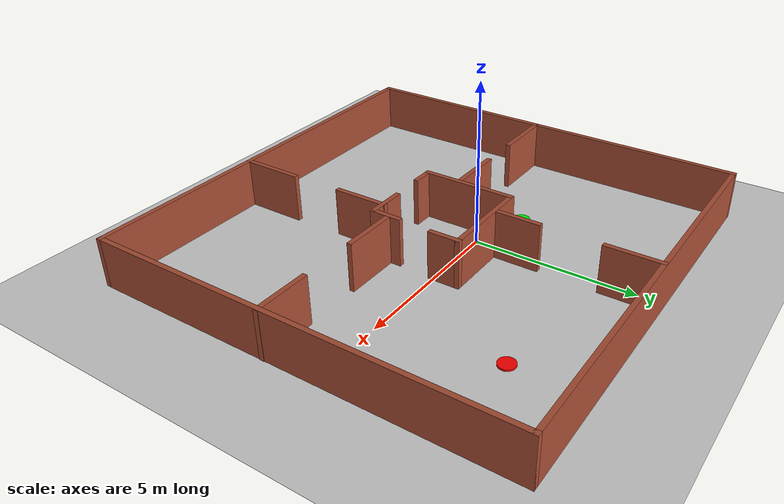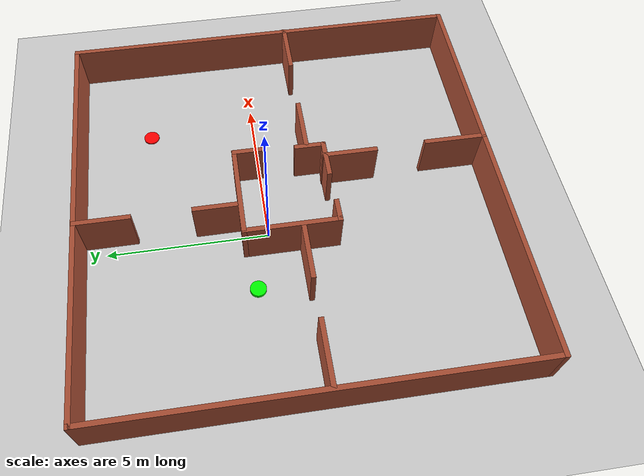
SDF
<sdf version="1.6">
 <world name="default">
  <light name="sun" type="directional">
   <pose>0 0 10 0 -0 0</pose>
   <diffuse>0.8 0.8 0.8 1</diffuse>
   <specular>0.2 0.2 0.2 1</specular>
   <attenuation>
    <range>1000</range>
    <constant>0.9</constant>
    <linear>0.01</linear>
    <quadratic>0.001</quadratic>
   </attenuation>
   <direction>-0.5 0.1 -0.9</direction>
   <spot><inner_angle>0</inner_angle><outer_angle>0</outer_angle><falloff>0</falloff></spot>
  </light>
  <model name="ground_plane">
   <static>1</static>
   <link name="link">
    <collision name="collision">
     <geometry><plane><normal>0 0 1</normal><size>100 100</size></plane></geometry>
     <surface>
      <contact><collide_bitmask>65535</collide_bitmask></contact>
      <friction><ode><mu>100</mu><mu2>50</mu2></ode></friction>
     </surface>
    </collision>
    <visual name="visual">
     <cast_shadows>0</cast_shadows>
     <geometry><plane><normal>0 0 1</normal><size>100 100</size></plane></geometry>
     <material>
      <script><uri>file://media/materials/scripts/gazebo.material</uri><name>Gazebo/Grey</name></script>
     </material>
    </visual>
   </link>
  </model>
  <gravity>0 0 -9.8</gravity>
  <magnetic_field>6e-06 2.3e-05 -4.2e-05</magnetic_field>
  <atmosphere type="adiabatic"/>
  <physics type="ode">
   <max_step_size>0.001</max_step_size>
   <real_time_factor>1</real_time_factor>
   <real_time_update_rate>1000</real_time_update_rate>
  </physics>
  <scene><ambient>0.4 0.4 0.4 1</ambient><background>0.7 0.7 0.7 1</background><shadows>1</shadows></scene>
  <spherical_coordinates>
   <surface_model>EARTH_WGS84</surface_model>
   <latitude_deg>0</latitude_deg>
   <longitude_deg>0</longitude_deg>
   <elevation>0</elevation>
   <heading_deg>0</heading_deg>
  </spherical_coordinates>
  <model name="BrickMaze1Building">
   <pose>0.921419 -0.732264 0 0 -0 0</pose>
   <link name="Wall_31">
    <collision name="Wall_31_Collision">
     <geometry><box><size>13 0.15 1.5</size></box></geometry>
     <pose>0 0 0.75 0 -0 0</pose>
    </collision>
    <visual name="Wall_31_Visual">
     <pose>0 0 0.75 0 -0 0</pose>
     <geometry><box><size>13 0.15 1.5</size></box></geometry>
     <material>
      <script><uri>file://media/materials/scripts/gazebo.material</uri><name>Gazebo/Bricks</name></script>
      <ambient>1 1 1 1</ambient>
     </material>
     <meta><layer>0</layer></meta>
    </visual>
    <pose>-0.0065 6.425 0 0 -0 0</pose>
   </link>
   <link name="Wall_32">
    <collision name="Wall_32_Collision">
     <geometry><box><size>13 0.15 1.5</size></box></geometry>
     <pose>0 0 0.75 0 -0 0</pose>
    </collision>
    <visual name="Wall_32_Visual">
     <pose>0 0 0.75 0 -0 0</pose>
     <geometry><box><size>13 0.15 1.5</size></box></geometry>
     <material>
      <script><uri>file://media/materials/scripts/gazebo.material</uri><name>Gazebo/Bricks</name></script>
      <ambient>1 1 1 1</ambient>
     </material>
     <meta><layer>0</layer></meta>
    </visual>
    <pose>6.4185 -0 0 0 -0 -1.5708</pose>
   </link>
   <link name="Wall_33">
    <collision name="Wall_33_Collision">
     <geometry><box><size>13 0.15 1.5</size></box></geometry>
     <pose>0 0 0.75 0 -0 0</pose>
    </collision>
    <visual name="Wall_33_Visual">
     <pose>0 0 0.75 0 -0 0</pose>
     <geometry><box><size>13 0.15 1.5</size></box></geometry>
     <material>
      <script><uri>file://media/materials/scripts/gazebo.material</uri><name>Gazebo/Bricks</name></script>
      <ambient>1 1 1 1</ambient>
     </material>
     <meta><layer>0</layer></meta>
    </visual>
    <pose>-0.0065 -6.425 0 0 -0 3.14159</pose>
   </link>
   <link name="Wall_34">
    <collision name="Wall_34_Collision">
     <geometry><box><size>13 0.15 1.5</size></box></geometry>
     <pose>0 0 0.75 0 -0 0</pose>
    </collision>
    <visual name="Wall_34_Visual">
     <pose>0 0 0.75 0 -0 0</pose>
     <geometry><box><size>13 0.15 1.5</size></box></geometry>
     <material>
      <script><uri>file://media/materials/scripts/gazebo.material</uri><name>Gazebo/Bricks</name></script>
      <ambient>1 1 1 1</ambient>
     </material>
     <meta><layer>0</layer></meta>
    </visual>
    <pose>-6.4315 -0 0 0 -0 1.5708</pose>
   </link>
   <link name="Wall_36">
    <collision name="Wall_36_Collision">
     <geometry><box><size>2 0.15 1.5</size></box></geometry>
     <pose>0 0 0.75 0 -0 0</pose>
    </collision>
    <visual name="Wall_36_Visual">
     <pose>0 0 0.75 0 -0 0</pose>
     <geometry><box><size>2 0.15 1.5</size></box></geometry>
     <material>
      <script><uri>file://media/materials/scripts/gazebo.material</uri><name>Gazebo/Bricks</name></script>
      <ambient>1 1 1 1</ambient>
     </material>
     <meta><layer>0</layer></meta>
    </visual>
    <pose>-5.4715 -0.252 0 0 -0 0</pose>
   </link>
   <link name="Wall_38">
    <collision name="Wall_38_Collision">
     <geometry><box><size>2 0.15 1.5</size></box></geometry>
     <pose>0 0 0.75 0 -0 0</pose>
    </collision>
    <visual name="Wall_38_Visual">
     <pose>0 0 0.75 0 -0 0</pose>
     <geometry><box><size>2 0.15 1.5</size></box></geometry>
     <material>
      <script><uri>file://media/materials/scripts/gazebo.material</uri><name>Gazebo/Bricks</name></script>
      <ambient>1 1 1 1</ambient>
     </material>
     <meta><layer>0</layer></meta>
    </visual>
    <pose>0.9105 -5.494 0 0 -0 1.5708</pose>
   </link>
   <link name="Wall_40">
    <collision name="Wall_40_Collision">
     <geometry><box><size>1 0.15 1.5</size></box></geometry>
     <pose>0 0 0.75 0 -0 0</pose>
    </collision>
    <visual name="Wall_40_Visual">
     <pose>0 0 0.75 0 -0 0</pose>
     <geometry><box><size>1 0.15 1.5</size></box></geometry>
     <material>
      <script><uri>file://media/materials/scripts/gazebo.material</uri><name>Gazebo/Bricks</name></script>
      <ambient>1 1 1 1</ambient>
     </material>
     <meta><layer>0</layer></meta>
    </visual>
    <pose>1.3625 1.077 0 0 -0 1.5708</pose>
   </link>
   <link name="Wall_41">
    <collision name="Wall_41_Collision">
     <geometry><box><size>3 0.15 1.5</size></box></geometry>
     <pose>0 0 0.75 0 -0 0</pose>
    </collision>
    <visual name="Wall_41_Visual">
     <pose>0 0 0.75 0 -0 0</pose>
     <geometry><box><size>3 0.15 1.5</size></box></geometry>
     <material>
      <script><uri>file://media/materials/scripts/gazebo.material</uri><name>Gazebo/Bricks</name></script>
      <ambient>1 1 1 1</ambient>
     </material>
     <meta><layer>0</layer></meta>
    </visual>
    <pose>-0.0625 1.502 0 0 -0 3.14159</pose>
   </link>
   <link name="Wall_42">
    <collision name="Wall_42_Collision">
     <geometry><box><size>3 0.15 1.5</size></box></geometry>
     <pose>0 0 0.75 0 -0 0</pose>
    </collision>
    <visual name="Wall_42_Visual">
     <pose>0 0 0.75 0 -0 0</pose>
     <geometry><box><size>3 0.15 1.5</size></box></geometry>
     <material>
      <script><uri>file://media/materials/scripts/gazebo.material</uri><name>Gazebo/Bricks</name></script>
      <ambient>1 1 1 1</ambient>
     </material>
     <meta><layer>0</layer></meta>
    </visual>
    <pose>-1.4875 0.077 0 0 -0 -1.5708</pose>
   </link>
   <link name="Wall_43">
    <collision name="Wall_43_Collision">
     <geometry><box><size>0.75 0.15 1.5</size></box></geometry>
     <pose>0 0 0.75 0 -0 0</pose>
    </collision>
    <visual name="Wall_43_Visual">
     <pose>0 0 0.75 0 -0 0</pose>
     <geometry><box><size>0.75 0.15 1.5</size></box></geometry>
     <material>
      <script><uri>file://media/materials/scripts/gazebo.material</uri><name>Gazebo/Bricks</name></script>
      <ambient>1 1 1 1</ambient>
     </material>
     <meta><layer>0</layer></meta>
    </visual>
    <pose>-1.1875 -1.348 0 0 -0 0</pose>
   </link>
   <link name="Wall_45">
    <collision name="Wall_45_Collision">
     <geometry><box><size>1.75 0.15 1.5</size></box></geometry>
     <pose>0 0 0.75 0 -0 0</pose>
    </collision>
    <visual name="Wall_45_Visual">
     <pose>0 0 0.75 0 -0 0</pose>
     <geometry><box><size>1.75 0.15 1.5</size></box></geometry>
     <material>
      <script><uri>file://media/materials/scripts/gazebo.material</uri><name>Gazebo/Bricks</name></script>
      <ambient>1 1 1 1</ambient>
     </material>
     <meta><layer>0</layer></meta>
    </visual>
    <pose>-2.4125 -0.252 0 0 -0 0</pose>
   </link>
   <link name="Wall_47">
    <collision name="Wall_47_Collision">
     <geometry><box><size>1.25 0.15 1.5</size></box></geometry>
     <pose>0 0 0.75 0 -0 0</pose>
    </collision>
    <visual name="Wall_47_Visual">
     <pose>0 0 0.75 0 -0 0</pose>
     <geometry><box><size>1.25 0.15 1.5</size></box></geometry>
     <material>
      <script><uri>file://media/materials/scripts/gazebo.material</uri><name>Gazebo/Bricks</name></script>
      <ambient>1 1 1 1</ambient>
     </material>
     <meta><layer>0</layer></meta>
    </visual>
    <pose>0.7425 -1.316 0 0 -0 0</pose>
   </link>
   <link name="Wall_48">
    <collision name="Wall_48_Collision">
     <geometry><box><size>1 0.15 1.5</size></box></geometry>
     <pose>0 0 0.75 0 -0 0</pose>
    </collision>
    <visual name="Wall_48_Visual">
     <pose>0 0 0.75 0 -0 0</pose>
     <geometry><box><size>1 0.15 1.5</size></box></geometry>
     <material>
      <script><uri>file://media/materials/scripts/gazebo.material</uri><name>Gazebo/Bricks</name></script>
      <ambient>1 1 1 1</ambient>
     </material>
     <meta><layer>0</layer></meta>
    </visual>
    <pose>1.2925 -0.891 0 0 -0 1.5708</pose>
   </link>
   <link name="Wall_50">
    <collision name="Wall_50_Collision">
     <geometry><box><size>1.75 0.15 1.5</size></box></geometry>
     <pose>0 0 0.75 0 -0 0</pose>
    </collision>
    <visual name="Wall_50_Visual">
     <pose>0 0 0.75 0 -0 0</pose>
     <geometry><box><size>1.75 0.15 1.5</size></box></geometry>
     <material>
      <script><uri>file://media/materials/scripts/gazebo.material</uri><name>Gazebo/Bricks</name></script>
      <ambient>1 1 1 1</ambient>
     </material>
     <meta><layer>0</layer></meta>
    </visual>
    <pose>2.1895 -0.784 0 0 -0 0</pose>
   </link>
   <link name="Wall_52">
    <collision name="Wall_52_Collision">
     <geometry><box><size>1.5 0.15 1.5</size></box></geometry>
     <pose>0 0 0.75 0 -0 0</pose>
    </collision>
    <visual name="Wall_52_Visual">
     <pose>0 0 0.75 0 -0 0</pose>
     <geometry><box><size>1.5 0.15 1.5</size></box></geometry>
     <material>
      <script><uri>file://media/materials/scripts/gazebo.material</uri><name>Gazebo/Bricks</name></script>
      <ambient>1 1 1 1</ambient>
     </material>
     <meta><layer>0</layer></meta>
    </visual>
    <pose>-0.5525 2.205 0 0 -0 1.5708</pose>
   </link>
   <link name="Wall_55">
    <collision name="Wall_55_Collision">
     <geometry><box><size>1.75 0.15 1.5</size></box></geometry>
     <pose>0 0 0.75 0 -0 0</pose>
    </collision>
    <visual name="Wall_55_Visual">
     <pose>0 0 0.75 0 -0 0</pose>
     <geometry><box><size>1.75 0.15 1.5</size></box></geometry>
     <material>
      <script><uri>file://media/materials/scripts/gazebo.material</uri><name>Gazebo/Bricks</name></script>
      <ambient>1 1 1 1</ambient>
     </material>
     <meta><layer>0</layer></meta>
    </visual>
    <pose>-0.5435 5.617 0 0 -0 -1.5708</pose>
   </link>
   <link name="Wall_57">
    <collision name="Wall_57_Collision">
     <geometry><box><size>1.75 0.15 1.5</size></box></geometry>
     <pose>0 0 0.75 0 -0 0</pose>
    </collision>
    <visual name="Wall_57_Visual">
     <pose>0 0 0.75 0 -0 0</pose>
     <geometry><box><size>1.75 0.15 1.5</size></box></geometry>
     <material>
      <script><uri>file://media/materials/scripts/gazebo.material</uri><name>Gazebo/Bricks</name></script>
      <ambient>1 1 1 1</ambient>
     </material>
     <meta><layer>0</layer></meta>
    </visual>
    <pose>5.6315 -0.803 0 0 -0 3.14159</pose>
   </link>
   <link name="Wall_59">
    <collision name="Wall_59_Collision">
     <geometry><box><size>1.75 0.15 1.5</size></box></geometry>
     <pose>0 0 0.75 0 -0 0</pose>
    </collision>
    <visual name="Wall_59_Visual">
     <pose>0 0 0.75 0 -0 0</pose>
     <geometry><box><size>1.75 0.15 1.5</size></box></geometry>
     <material>
      <script><uri>file://media/materials/scripts/gazebo.material</uri><name>Gazebo/Bricks</name></script>
      <ambient>1 1 1 1</ambient>
     </material>
     <meta><layer>0</layer></meta>
    </visual>
    <pose>0.8635 -2.092 0 0 -0 -1.5708</pose>
   </link>
   <static>1</static>
  </model>
  <model name="unit_cylinder2">
   <link name="link">
    <inertial>
     <mass>1</mass>
     <inertia><ixx>0.145833</ixx><ixy>0</ixy><ixz>0</ixz><iyy>0.145833</iyy><iyz>0</iyz><izz>0.125</izz></inertia>
     <pose>0 0 -0.45 0 -0 0</pose>
    </inertial>
    <visual name="visual">
     <geometry><cylinder><radius>0.25</radius><length>0.05</length></cylinder></geometry>
     <material>
      <script><name>Gazebo/Grey</name><uri>file://media/materials/scripts/gazebo.material</uri></script>
      <shader type="pixel"><normal_map>__default__</normal_map></shader>
      <ambient>1 0 0 0</ambient>
      <diffuse>1 0 0 0</diffuse>
      <specular>1 0 0 1</specular>
      <emissive>0 0 0 1</emissive>
     </material>
     <pose>0 0 -0.45 0 -0 0</pose>
    </visual>
    <collision name="collision">
     <pose>0 0 -0.45 0 -0 0</pose>
     <geometry><cylinder><radius>0.25</radius><length>0.05</length></cylinder></geometry>
     <surface>
      <friction>
       <ode><mu>1</mu><mu2>1</mu2><fdir1>0 0 0</fdir1><slip1>0</slip1><slip2>0</slip2></ode>
       <torsional>
        <coefficient>1</coefficient>
        <patch_radius>0</patch_radius>
        <surface_radius>0</surface_radius>
        <use_patch_radius>1</use_patch_radius>
        <ode><slip>0</slip></ode>
       </torsional>
      </friction>
      <bounce><restitution_coefficient>0</restitution_coefficient><threshold>1e+06</threshold></bounce>
      <contact>
       <collide_without_contact>0</collide_without_contact>
       <collide_without_contact_bitmask>1</collide_without_contact_bitmask>
       <collide_bitmask>1</collide_bitmask>
       <ode>
        <soft_cfm>0</soft_cfm>
        <soft_erp>0.2</soft_erp>
        <kp>1e+13</kp>
        <kd>1</kd>
        <max_vel>0.01</max_vel>
        <min_depth>0</min_depth>
       </ode>
       <bullet>
        <split_impulse>1</split_impulse>
        <split_impulse_penetration_threshold>-0.01</split_impulse_penetration_threshold>
        <soft_cfm>0</soft_cfm>
        <soft_erp>0.2</soft_erp>
        <kp>1e+13</kp>
        <kd>1</kd>
       </bullet>
      </contact>
     </surface>
    </collision>
   </link>
   <static>0</static>
   <pose>4.38244 3.46082 0.5 0 -0 0</pose>
  </model>
  <model name="cylinder2G">
   <link name="link">
    <inertial>
     <mass>1</mass>
     <inertia><ixx>0.145833</ixx><ixy>0</ixy><ixz>0</ixz><iyy>0.145833</iyy><iyz>0</iyz><izz>0.125</izz></inertia>
     <pose>0 0 -0.5 0 -0 0</pose>
    </inertial>
    <visual name="visual">
     <geometry><cylinder><radius>0.25</radius><length>0.1</length></cylinder></geometry>
     <material>
      <script><name>Gazebo/Grey</name><uri>file://media/materials/scripts/gazebo.material</uri></script>
      <shader type="pixel"><normal_map>__default__</normal_map></shader>
      <ambient>0 1 0.161 1</ambient>
      <diffuse>0 1 0 1</diffuse>
      <specular>0 1 0 1</specular>
      <emissive>0 0 0.161 1</emissive>
     </material>
     <pose>0 0 -0.5 0 -0 0</pose>
    </visual>
    <collision name="collision">
     <pose>0 0 -0.5 0 -0 0</pose>
     <geometry><cylinder><radius>0.25</radius><length>0.1</length></cylinder></geometry>
     <surface>
      <friction>
       <ode><mu>1</mu><mu2>1</mu2><fdir1>0 0 0</fdir1><slip1>0</slip1><slip2>0</slip2></ode>
       <torsional>
        <coefficient>1</coefficient>
        <patch_radius>0</patch_radius>
        <surface_radius>0</surface_radius>
        <use_patch_radius>1</use_patch_radius>
        <ode><slip>0</slip></ode>
       </torsional>
      </friction>
      <bounce><restitution_coefficient>0</restitution_coefficient><threshold>1e+06</threshold></bounce>
      <contact>
       <collide_without_contact>0</collide_without_contact>
       <collide_without_contact_bitmask>1</collide_without_contact_bitmask>
       <collide_bitmask>1</collide_bitmask>
       <ode>
        <soft_cfm>0</soft_cfm>
        <soft_erp>0.2</soft_erp>
        <kp>1e+13</kp>
        <kd>1</kd>
        <max_vel>0.01</max_vel>
        <min_depth>0</min_depth>
       </ode>
       <bullet>
        <split_impulse>1</split_impulse>
        <split_impulse_penetration_threshold>-0.01</split_impulse_penetration_threshold>
        <soft_cfm>0</soft_cfm>
        <soft_erp>0.2</soft_erp>
        <kp>1e+13</kp>
        <kd>1</kd>
       </bullet>
      </contact>
     </surface>
    </collision>
   </link>
   <static>0</static>
   <pose>-1.79088 0.544826 0.549999 0 -0 0</pose>
  </model>
 </world>
</sdf>
